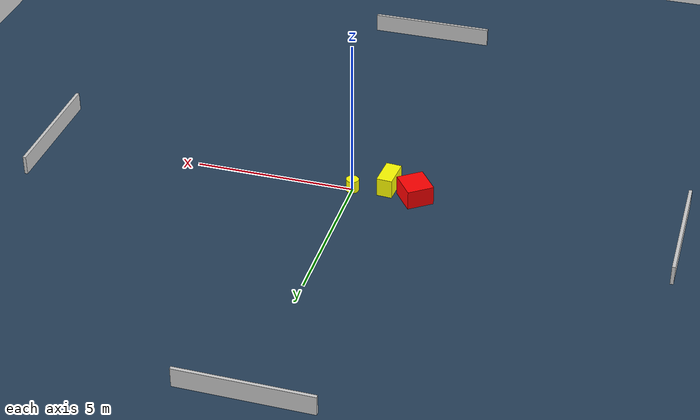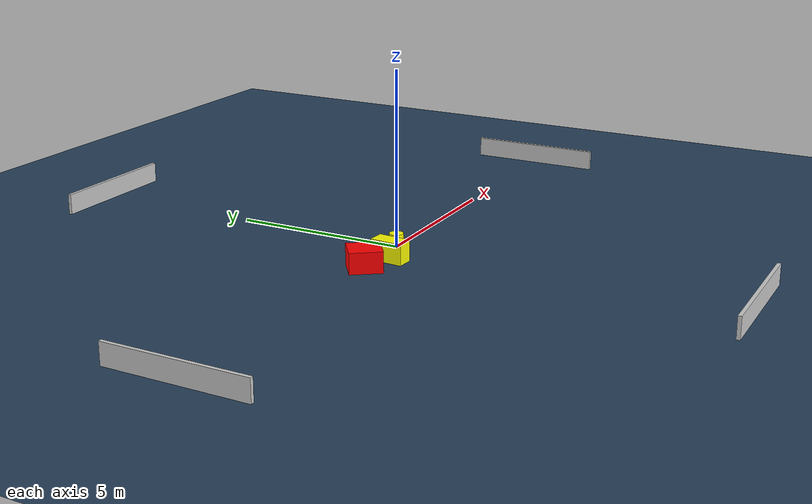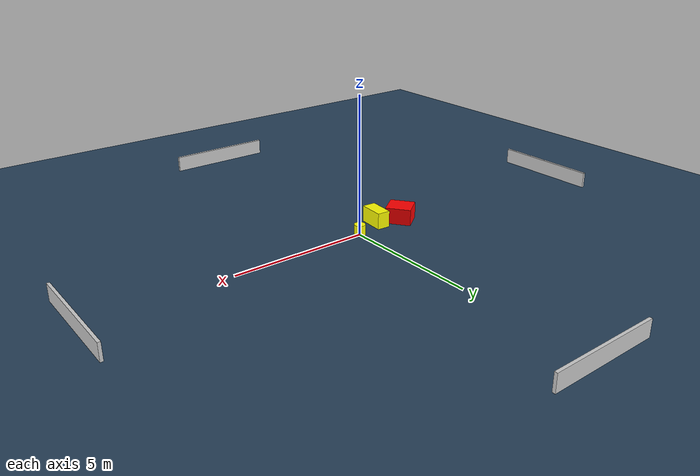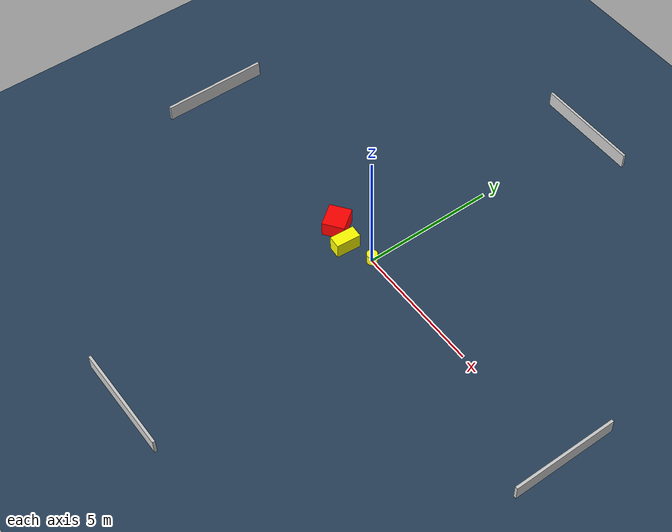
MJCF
<?xml version="1.0" ?>
<mujoco model="generated_environment">
  <option timestep="0.01" integrator="RK4" cone="elliptic"/>
  <default>
    <geom density="1"/>
  </default>
  <asset>
    <texture builtin="gradient" height="3072" name="skybox" rgb1="0.3 0.5 0.7" rgb2="0 0 0" type="skybox" width="512"/>
    <texture builtin="checker" height="300" name="groundplane" rgb1="0.2 0.3 0.4" rgb2="0.1 0.2 0.3" type="2d" width="300"/>
    <material name="groundplane" reflectance="0.2" texrepeat="5 5" texture="groundplane"/>
  </asset>
  <worldbody>
    <light dir="0 0 -1" directional="true" pos="0 0 1.5"/>
    <geom condim="3" friction="0.5 0.005 0.001" material="groundplane" name="floor" pos="0 0 0" size="0 0 0.05" type="plane"/>
    <body name="walls">
      <geom name="wall_1" condim="4" pos="-10.0 0.0 0.3" rgba="0.800000011920929 0.800000011920929 0.800000011920929 1.0" size="0.05 2.0 0.3" type="box"/>
      <geom name="wall_2" condim="4" pos="10.0 0.0 0.3" rgba="0.800000011920929 0.800000011920929 0.800000011920929 1.0" size="0.05 2.0 0.3" type="box"/>
      <geom name="wall_3" condim="4" pos="0.0 -10.0 0.3" rgba="0.800000011920929 0.800000011920929 0.800000011920929 1.0" size="2.0 0.05 0.3" type="box"/>
      <geom name="wall_4" condim="4" pos="0.0 10.0 0.3" rgba="0.800000011920929 0.800000011920929 0.800000011920929 1.0" size="2.0 0.05 0.3" type="box"/>
    </body>
    <body name="robot">
      <joint name="joint_x" type="slide" pos="0 0 0" axis="1 0 0"/>
      <joint name="joint_y" type="slide" pos="0 0 0" axis="0 1 0"/>
      <geom name="robot" type="cylinder" pos="0.0 0.0 0.2" size="0.2 0.2 0.0" mass="5.0" friction="1.0 0.005 0.0001" condim="4" rgba="1.0 1.0 0.0 1.0"/>
    </body>
    <body name="obstacle_1_movable">
      <geom name="obstacle_1_movable" condim="4" pos="-1.0540451819781849 -0.3818079123818105 0.3" euler="0 0 86.16530108893936" friction="0.0 0.005 0.001" rgba="1.0 1.0 0.0 1.0" size="0.4661145465436555 0.2419998876836896 0.3" type="box" mass="0.1"/>
      <joint type="free"/>
    </body>
    <body name="obstacle_2_static">
      <geom name="obstacle_2_static" condim="4" pos="-1.9518240123371176 -0.08752950194773368 0.3" euler="0 0 306.3892574574159" friction="0.0 0.005 0.001" rgba="1.0 0.0 0.0 1.0" size="0.4597928656983229 0.419829068092159 0.3" type="box"/>
    </body>
  </worldbody>
  <actuator>
    <motor name="actuator_x" joint="joint_x" gear="1" ctrlrange="-1 1"/>
    <motor name="actuator_y" joint="joint_y" gear="1" ctrlrange="-1 1"/>
  </actuator>
</mujoco>
